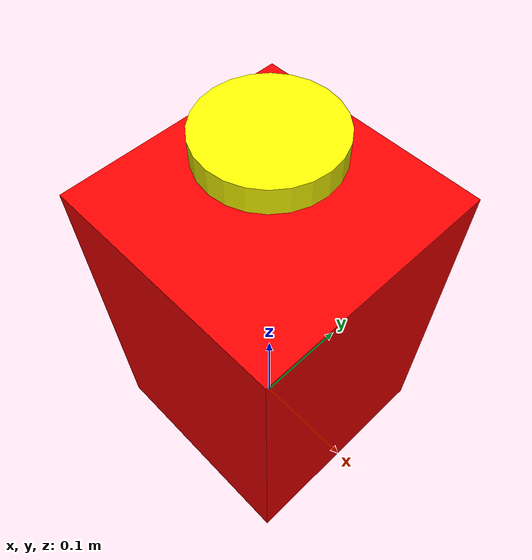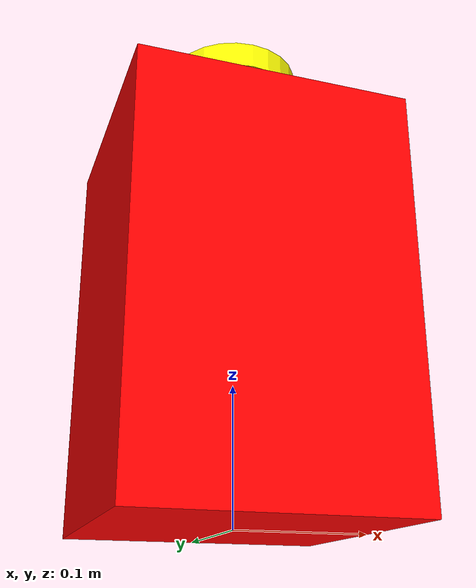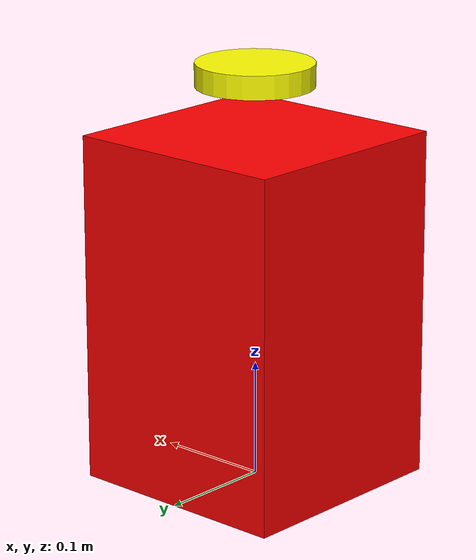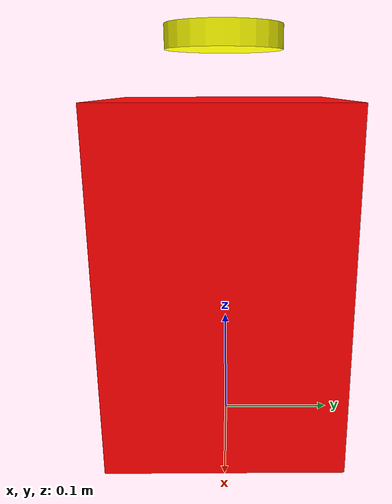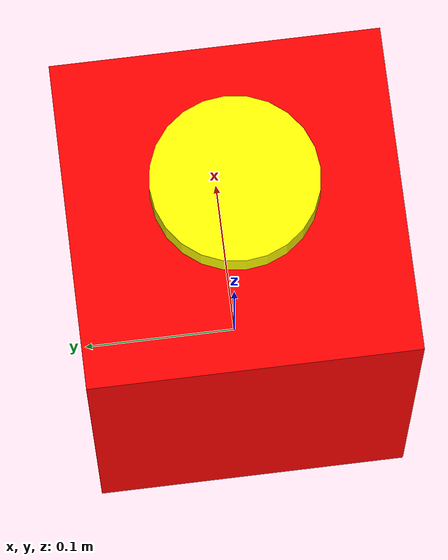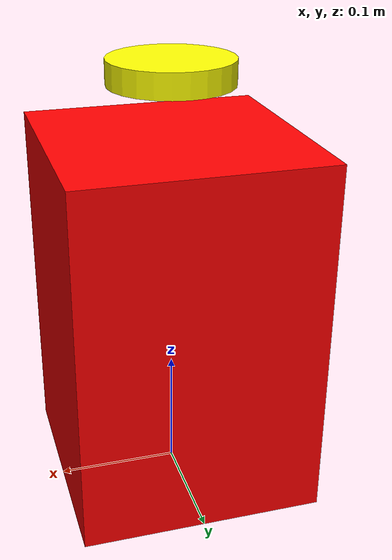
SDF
<?xml version="1.0" ?>
<sdf version="1.8">
  <model name="box_with_reaction_wheel">
    <static>false</static>
    <link name="box_link">
      <pose>0 0 0.15 0 0 0</pose>
      <inertial>
        <mass>1.0</mass>
        <inertia>
          <ixx>0.01</ixx>
          <iyy>0.01</iyy>
          <izz>0.01</izz>
          <ixy>0</ixy>
          <ixz>0</ixz>
          <iyz>0</iyz>
        </inertia>
      </inertial>
      <collision name="collision">
        <geometry>
          <box>
            <size>0.2 0.2 0.3</size>
          </box>
        </geometry>
         <surface>
          <contact>
            <ode>
              <kp>100000</kp>
              <kd>100000</kd>
            </ode>
          </contact>
          <friction>
            <ode>
              <mu>0</mu>
              <mu2>0</mu2>
              <fdir1>0 0 1</fdir1>
            </ode>
          </friction>
        </surface>
      </collision>
      <visual name="visual">
        <geometry>
          <box>
            <size>0.2 0.2 0.3</size>
          </box>
        </geometry>
        <material>
          <ambient>0.8 0.8 0.8 1</ambient>
          <diffuse>1 0 0 1</diffuse>
          <specular>0.8 0.8 0.8 1</specular>
          <emissive>0 0 0 1</emissive>
        </material>
      </visual>
    </link>

    <link name="reaction_wheel_link">
      <pose relative_to='reaction_wheel_joint'>0 0 0 0 0 0</pose>
      <inertial>
        <mass>0.1</mass>
        <inertia>
          <ixx>0.0001</ixx>
          <iyy>0.0001</iyy>
          <izz>0.0002</izz>
          <ixy>0</ixy>
          <ixz>0</ixz>
          <iyz>0</iyz>
        </inertia>
      </inertial>
      <collision name="collision">
        <geometry>
          <cylinder>
            <radius>0.05</radius>
            <length>0.02</length>
          </cylinder>
        </geometry>
      </collision>
      <visual name="visual">
        <geometry>
          <cylinder>
            <radius>0.05</radius>
            <length>0.02</length>
          </cylinder>
        </geometry>
        <material>
          <ambient>0.2 0.2 0.2 1</ambient>
          <diffuse>1 1 0 1</diffuse>
          <specular>0.1 0.1 0.1 1</specular>
          <emissive>0 0 0 1</emissive>
        </material>
      </visual>
    </link>

    <joint name="reaction_wheel_joint" type="revolute">
      <parent>box_link</parent>
      <child>reaction_wheel_link</child>
      <pose relative_to='box_link'>0 0 0.2 0 0 0</pose>
      <axis>
        <xyz>0 0 1</xyz>
        <limit>
          <lower>-1e16</lower>
          <upper>1e16</upper>
          <effort>100</effort>
          <velocity>10</velocity>
        </limit>
        <dynamics>
          <damping>0.01</damping>
          <friction>0.001</friction>
        </dynamics>
      </axis>
    </joint>

    <plugin filename="gz-sim-joint-controller-system" name="gz::sim::systems::JointController">
      <joint_name>reaction_wheel_joint</joint_name>
      <topic>rxn_vel</topic>
      <initial_velocity>10.0</initial_velocity>
    </plugin>
  </model>
</sdf>
